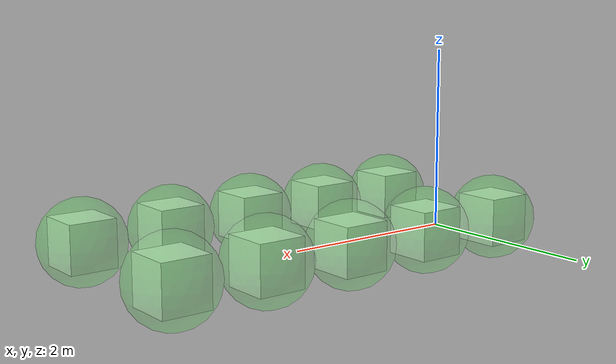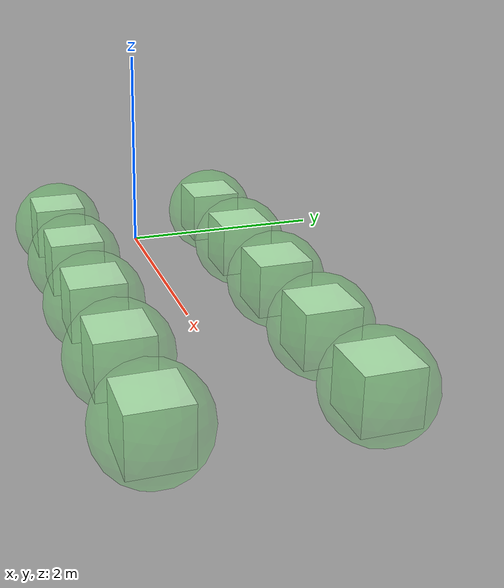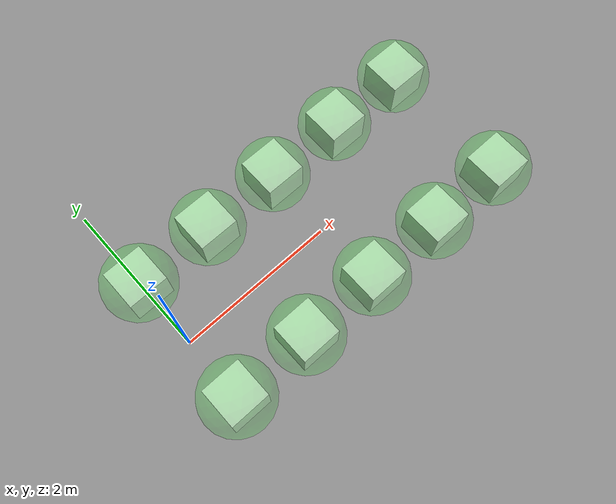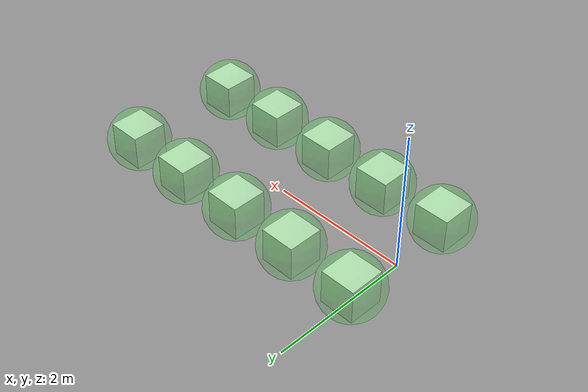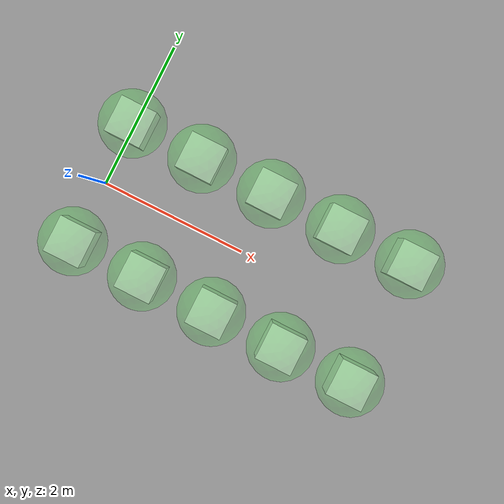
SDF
<?xml version="1.0" ?>
<sdf version="1.6">
  <model name="trap_c_3_a">
    <static>true</static>

    <include>
      <name>op_r</name>
      <uri>model://vis_cue_attract</uri>
      <pose>0 -0.85 0.25 0 0 0</pose>
    </include>
    <include>
      <name>op_l</name>
      <uri>model://vis_cue_attract</uri>
      <pose>0 0.85 0.25 0 0 0</pose>
    </include>
    <include>
      <name>attracting_cue_2</name>
      <uri>model://vis_cue_attract</uri>
      <pose>1 -0.85 0.25 0 0 0</pose>
    </include>
    <include>
      <name>attracting_cue_3</name>
      <uri>model://vis_cue_attract</uri>
      <pose>1 0.85 0.25 0 0 0</pose>
    </include>
    <include>
      <name>attracting_cue_4</name>
      <uri>model://vis_cue_attract</uri>
      <pose>2 -0.85 0.25 0 0 0</pose>
    </include>
    <include>
      <name>attracting_cue_5</name>
      <uri>model://vis_cue_attract</uri>
      <pose>2 0.85 0.25 0 0 0</pose>
    </include>
    <include>
      <name>attracting_cue_6</name>
      <uri>model://vis_cue_attract</uri>
      <pose>3 -0.85 0.25 0 0 0</pose>
    </include>
    <include>
      <name>attracting_cue_7</name>
      <uri>model://vis_cue_attract</uri>
      <pose>3 0.85 0.25 0 0 0</pose>
    </include>
    <include>
      <name>attracting_cue_8</name>
      <uri>model://vis_cue_attract</uri>
      <pose>4 -0.85 0.25 0 0 0</pose>
    </include>
    <include>
      <name>attracting_cue_9</name>
      <uri>model://vis_cue_attract</uri>
      <pose>4 0.85 0.25 0 0 0</pose>
    </include>

  </model>
</sdf>

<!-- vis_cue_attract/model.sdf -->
<sdf version="1.6">
  <model name="vis_cue_attract">
    <static>false</static>
    <pose>0 0 0.25 0 0 0</pose>
    <link name='vis_cue_attract'>
      <inertial>
        <mass>1</mass>
        <inertia>
          <ixx>0.166667</ixx>
          <ixy>0</ixy>
          <ixz>0</ixz>
          <iyy>0.166667</iyy>
          <iyz>0</iyz>
          <izz>0.166667</izz>
        </inertia>
      </inertial>
      <collision name='collision'>
        <geometry>
          <box>
            <size>0.5 0.5 0.5</size>
          </box>
        </geometry>
        <max_contacts>10</max_contacts>
        <surface>
          <contact>
            <ode/>
          </contact>
          <bounce/>
          <friction>
            <torsional>
              <ode/>
            </torsional>
            <ode/>
          </friction>
        </surface>
      </collision>
      <visual name='box_visual'>
        <geometry>
          <box>
            <size>0.5 0.5 0.5</size>
          </box>
        </geometry>
        <material>
          <ambient>0.85 0.85 0.85 1</ambient>
          <diffuse>0.85 0.85 0.85 1</diffuse>
          <specular>0.15 0.15 0.15 1</specular>
          <emissive>0 0 0 0</emissive>
        </material>
      </visual>
      <visual name='cue_visual'>
        <geometry>
          <mesh>
            <uri>model://vis_cue_attract/meshes/sphere.stl</uri>
            <scale>0.9 0.9 0.9</scale>
          </mesh>
        </geometry>
        <material>
          <ambient>0 1 0 0.10</ambient>
          <diffuse>0 1 0 0.20</diffuse>
          <specular>0 1 0 0.20</specular>
          <emissive>0 1 0 0.1</emissive>
        </material>
      </visual>
      <self_collide>0</self_collide>
      <kinematic>0</kinematic>
    </link>
  </model>
</sdf>
